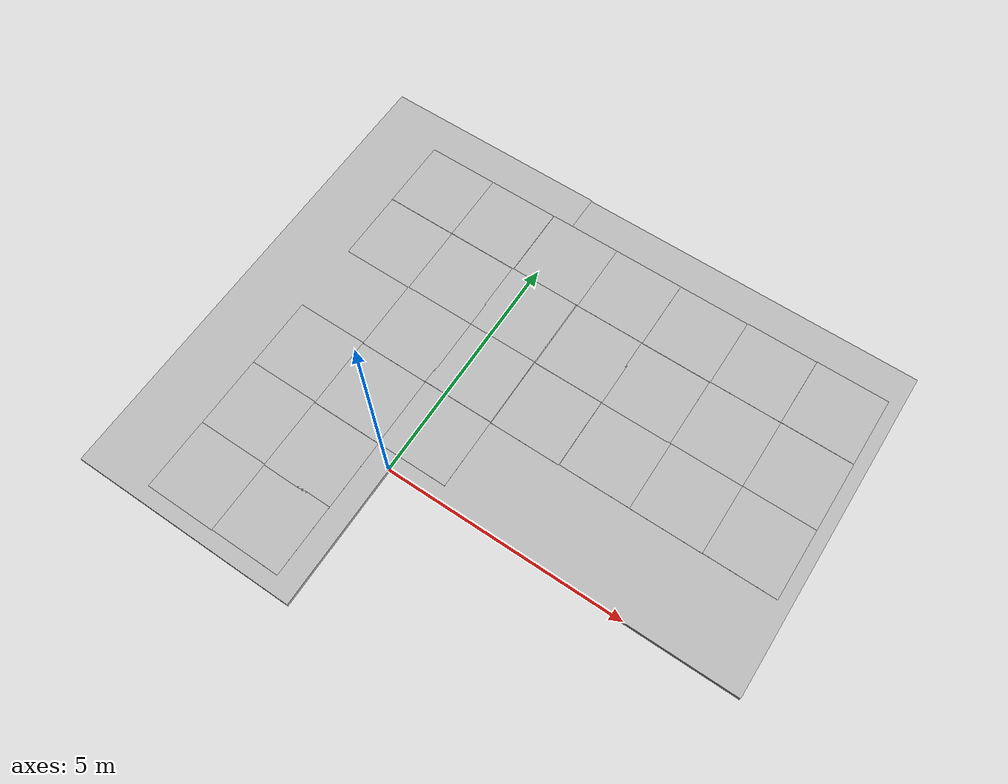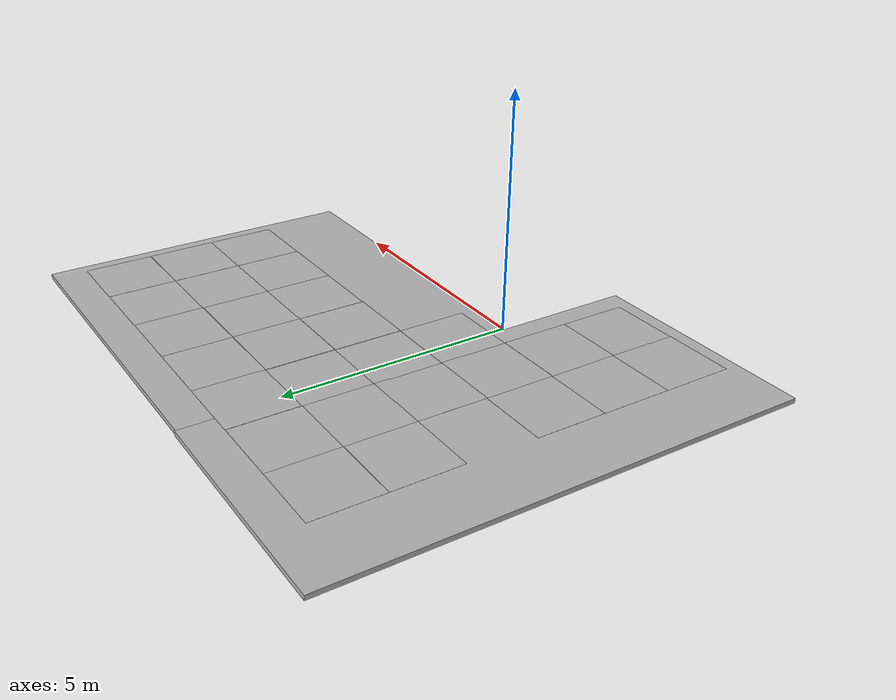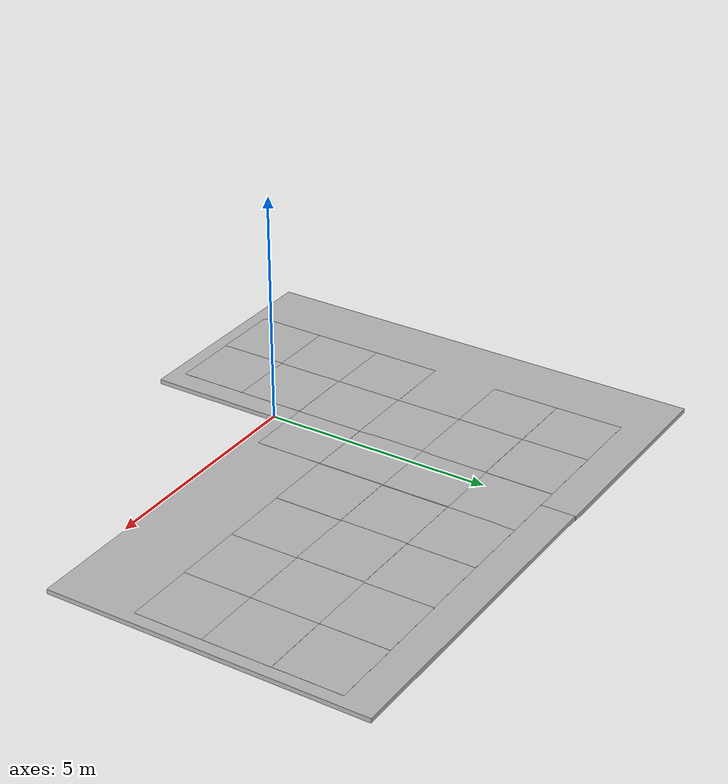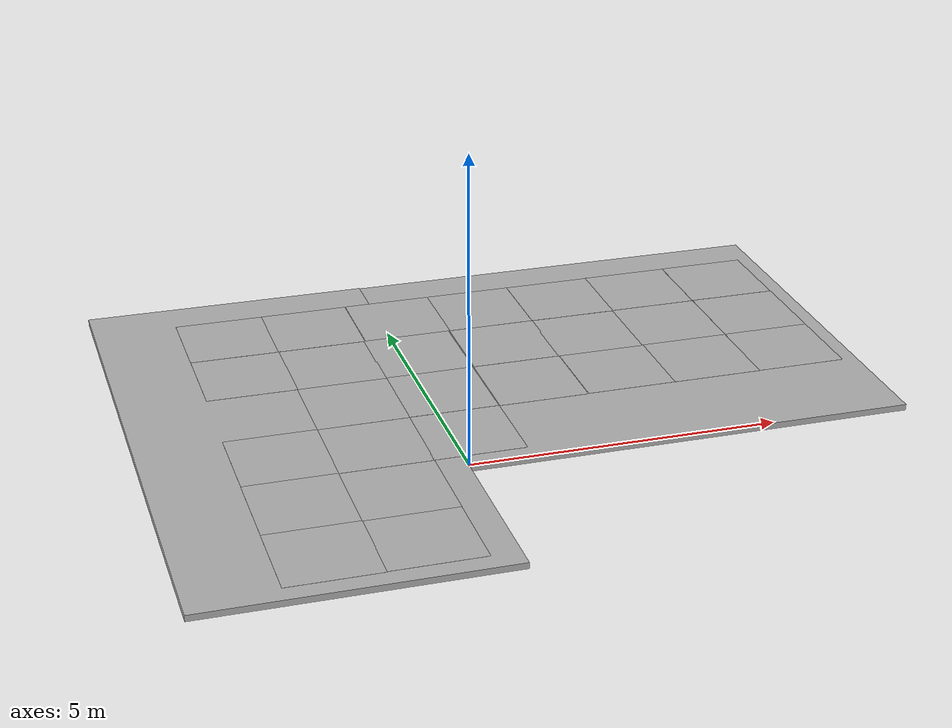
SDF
<sdf version="1.6">
 <world name="default">
  <light name="sun_light" type="directional">
   <pose>0 0 10 0 -0 0</pose>
   <diffuse>0.5 0.5 0.5 1</diffuse>
   <specular>0.1 0.1 0.1 1</specular>
   <direction>0.1 0.1 -0.9</direction>
   <attenuation>
    <range>20</range>
    <constant>0.5</constant>
    <linear>0.01</linear>
    <quadratic>0.001</quadratic>
   </attenuation>
  </light>
  <model name="ground_1">
   <static>1</static>
   <link name="link">
    <collision name="collision"><geometry><box><size>7.3 7.04 0.1</size></box></geometry></collision>
    <visual name="visual"><geometry><box><size>7.3 7.04 0.1</size></box></geometry></visual>
   </link>
   <pose>3.65 3.52 -0.06 0 -0 0</pose>
  </model>
  <model name="ground_2">
   <static>1</static>
   <link name="link">
    <collision name="collision"><geometry><box><size>4.85 10.04 0.1</size></box></geometry></collision>
    <visual name="visual"><geometry><box><size>4.85 10.04 0.1</size></box></geometry></visual>
   </link>
   <pose>-2.425 2.04 -0.06 0 -0 0</pose>
  </model>
  <gravity>0 0 -9.8</gravity>
  <magnetic_field>6e-06 2.3e-05 -4.2e-05</magnetic_field>
  <atmosphere type="adiabatic"/>
  <physics name="default_physics" default="0" type="ode">
   <max_step_size>0.001</max_step_size>
   <real_time_factor>1</real_time_factor>
   <real_time_update_rate>1000</real_time_update_rate>
  </physics>
  <scene><ambient>0.4 0.4 0.4 1</ambient><background>0.7 0.7 0.7 1</background><shadows>1</shadows></scene>
  <spherical_coordinates>
   <surface_model>EARTH_WGS84</surface_model>
   <latitude_deg>0</latitude_deg>
   <longitude_deg>0</longitude_deg>
   <elevation>0</elevation>
   <heading_deg>0</heading_deg>
  </spherical_coordinates>
  <model name="Tile/1-2">
   <static>1</static>
   <link name="link">
    <collision name="collision">
     <geometry><plane><normal>0 0 1</normal><size>1.5 1.5</size></plane></geometry>
     <surface><friction><ode><mu>100</mu><mu2>50</mu2></ode></friction></surface>
    </collision>
    <visual name="visual">
     <cast_shadows>0</cast_shadows>
     <geometry><plane><normal>0 0 1</normal><size>1.5 1.5</size></plane></geometry>
     <material>
      <script>
       <uri>model://modular_1_5m/materials/scripts</uri>
       <uri>model://modular_1_5m/materials/textures</uri>
       <name>Tile/0ef212cca902ba88c256bf758298985edb5f062ee662a8a898f01c2d14971107</name>
      </script>
     </material>
    </visual>
   </link>
   <pose>-1.21412 -0.448569 0 0 -0 0</pose>
  </model>
  <model name="Tile/0-4">
   <static>1</static>
   <link name="link">
    <collision name="collision">
     <geometry><plane><normal>0 0 1</normal><size>1.5 1.5</size></plane></geometry>
     <surface><friction><ode><mu>100</mu><mu2>50</mu2></ode></friction></surface>
    </collision>
    <visual name="visual">
     <cast_shadows>0</cast_shadows>
     <geometry><plane><normal>0 0 1</normal><size>1.5 1.5</size></plane></geometry>
     <material>
      <script>
       <uri>model://modular_1_5m/materials/scripts</uri>
       <uri>model://modular_1_5m/materials/textures</uri>
       <name>Tile/bd2e4e8dc4d154aa52ef85671fbe3a3d6fb2f0ad04a495109eed43c397f7317c</name>
      </script>
     </material>
    </visual>
   </link>
   <pose>-1.20876 1.05417 0 0 -0 0</pose>
  </model>
  <model name="Tile/0-5">
   <static>1</static>
   <link name="link">
    <collision name="collision">
     <geometry><plane><normal>0 0 1</normal><size>1.5 1.5</size></plane></geometry>
     <surface><friction><ode><mu>100</mu><mu2>50</mu2></ode></friction></surface>
    </collision>
    <visual name="visual">
     <cast_shadows>0</cast_shadows>
     <geometry><plane><normal>0 0 1</normal><size>1.5 1.5</size></plane></geometry>
     <material>
      <script>
       <uri>model://modular_1_5m/materials/scripts</uri>
       <uri>model://modular_1_5m/materials/textures</uri>
       <name>Tile/dac9e4bacd653d34d3e52907062531ea15e1a59280949e193dc03b8afc83a67a</name>
      </script>
     </material>
    </visual>
   </link>
   <pose>-1.20331 2.55484 0 0 -0 0</pose>
  </model>
  <model name="Tile/1-1">
   <static>1</static>
   <link name="link">
    <collision name="collision">
     <geometry><plane><normal>0 0 1</normal><size>1.5 1.5</size></plane></geometry>
     <surface><friction><ode><mu>100</mu><mu2>50</mu2></ode></friction></surface>
    </collision>
    <visual name="visual">
     <cast_shadows>0</cast_shadows>
     <geometry><plane><normal>0 0 1</normal><size>1.5 1.5</size></plane></geometry>
     <material>
      <script>
       <uri>model://modular_1_5m/materials/scripts</uri>
       <uri>model://modular_1_5m/materials/textures</uri>
       <name>Tile/fe2560a4458b9ff20b2fd78109d201f7cdd005175f192787a1e462be4ea3aaaa</name>
      </script>
     </material>
    </visual>
   </link>
   <pose>-1.21795 -1.92098 0 0 -0 0</pose>
  </model>
  <model name="Tile/1-3">
   <static>1</static>
   <link name="link">
    <collision name="collision">
     <geometry><plane><normal>0 0 1</normal><size>1.5 1.5</size></plane></geometry>
     <surface><friction><ode><mu>100</mu><mu2>50</mu2></ode></friction></surface>
    </collision>
    <visual name="visual">
     <cast_shadows>0</cast_shadows>
     <geometry><plane><normal>0 0 1</normal><size>1.5 1.5</size></plane></geometry>
     <material>
      <script>
       <uri>model://modular_1_5m/materials/scripts</uri>
       <uri>model://modular_1_5m/materials/textures</uri>
       <name>Tile/d12d42906456b9cd1629af3da9e33e2e839a5b7c716c83248051e1cc15536d39</name>
      </script>
     </material>
    </visual>
   </link>
   <pose>-1.20342 4.04466 0 0 -0 0</pose>
  </model>
  <model name="Tile/0-3">
   <static>1</static>
   <link name="link">
    <collision name="collision">
     <geometry><plane><normal>0 0 1</normal><size>1.5 1.5</size></plane></geometry>
     <surface><friction><ode><mu>100</mu><mu2>50</mu2></ode></friction></surface>
    </collision>
    <visual name="visual">
     <cast_shadows>0</cast_shadows>
     <geometry><plane><normal>0 0 1</normal><size>1.5 1.5</size></plane></geometry>
     <material>
      <script>
       <uri>model://modular_1_5m/materials/scripts</uri>
       <uri>model://modular_1_5m/materials/textures</uri>
       <name>Tile/761d12e1573e512c208124fe0ac63aa6f2105272085d87fe58e4fc635014111e</name>
      </script>
     </material>
    </visual>
   </link>
   <pose>-2.70962 -1.93138 0 0 -0 0</pose>
  </model>
  <model name="Tile/1-2_0">
   <static>1</static>
   <link name="link">
    <collision name="collision">
     <geometry><plane><normal>0 0 1</normal><size>1.5 1.5</size></plane></geometry>
     <surface><friction><ode><mu>100</mu><mu2>50</mu2></ode></friction></surface>
    </collision>
    <visual name="visual">
     <cast_shadows>0</cast_shadows>
     <geometry><plane><normal>0 0 1</normal><size>1.5 1.5</size></plane></geometry>
     <material>
      <script>
       <uri>model://modular_1_5m/materials/scripts</uri>
       <uri>model://modular_1_5m/materials/textures</uri>
       <name>Tile/0ef212cca902ba88c256bf758298985edb5f062ee662a8a898f01c2d14971107</name>
      </script>
     </material>
    </visual>
   </link>
   <pose>-2.7077 -0.43225 0 0 -0 0</pose>
  </model>
  <model name="Tile/1-6">
   <static>1</static>
   <link name="link">
    <collision name="collision">
     <geometry><plane><normal>0 0 1</normal><size>1.5 1.5</size></plane></geometry>
     <surface><friction><ode><mu>100</mu><mu2>50</mu2></ode></friction></surface>
    </collision>
    <visual name="visual">
     <cast_shadows>0</cast_shadows>
     <geometry><plane><normal>0 0 1</normal><size>1.5 1.5</size></plane></geometry>
     <material>
      <script>
       <uri>model://modular_1_5m/materials/scripts</uri>
       <uri>model://modular_1_5m/materials/textures</uri>
       <name>Tile/48e696dfa004bf2f9e7b4f8d08fdb1a6eae7f97953b97489102c9038338946a1</name>
      </script>
     </material>
    </visual>
   </link>
   <pose>-1.1981 5.54988 0 0 -0 0</pose>
  </model>
  <model name="Tile/2-6">
   <static>1</static>
   <link name="link">
    <collision name="collision">
     <geometry><plane><normal>0 0 1</normal><size>1.5 1.5</size></plane></geometry>
     <surface><friction><ode><mu>100</mu><mu2>50</mu2></ode></friction></surface>
    </collision>
    <visual name="visual">
     <cast_shadows>0</cast_shadows>
     <geometry><plane><normal>0 0 1</normal><size>1.5 1.5</size></plane></geometry>
     <material>
      <script>
       <uri>model://modular_1_5m/materials/scripts</uri>
       <uri>model://modular_1_5m/materials/textures</uri>
       <name>Tile/a8903ae51021b9dbd68d7e92874488b7e6f395cdf006b3eaca1ecc0978cd4b11</name>
      </script>
     </material>
    </visual>
   </link>
   <pose>0.309774 5.55542 0 0 -0 0</pose>
  </model>
  <model name="Tile/1-1_0">
   <static>1</static>
   <link name="link">
    <collision name="collision">
     <geometry><plane><normal>0 0 1</normal><size>1.5 1.5</size></plane></geometry>
     <surface><friction><ode><mu>100</mu><mu2>50</mu2></ode></friction></surface>
    </collision>
    <visual name="visual">
     <cast_shadows>0</cast_shadows>
     <geometry><plane><normal>0 0 1</normal><size>1.5 1.5</size></plane></geometry>
     <material>
      <script>
       <uri>model://modular_1_5m/materials/scripts</uri>
       <uri>model://modular_1_5m/materials/textures</uri>
       <name>Tile/fe2560a4458b9ff20b2fd78109d201f7cdd005175f192787a1e462be4ea3aaaa</name>
      </script>
     </material>
    </visual>
   </link>
   <pose>0.277497 1.0589 0 0 -0 0</pose>
  </model>
  <model name="Tile/0-6">
   <static>1</static>
   <link name="link">
    <collision name="collision">
     <geometry><plane><normal>0 0 1</normal><size>1.5 1.5</size></plane></geometry>
     <surface><friction><ode><mu>100</mu><mu2>50</mu2></ode></friction></surface>
    </collision>
    <visual name="visual">
     <cast_shadows>0</cast_shadows>
     <geometry><plane><normal>0 0 1</normal><size>1.5 1.5</size></plane></geometry>
     <material>
      <script>
       <uri>model://modular_1_5m/materials/scripts</uri>
       <uri>model://modular_1_5m/materials/textures</uri>
       <name>Tile/323b286a9a413c813147b38ae356110cffdc09689052eb06e414f9feb75eca89</name>
      </script>
     </material>
    </visual>
   </link>
   <pose>-2.69561 5.54777 0 0 -0 0</pose>
  </model>
  <model name="Tile/0-3_0">
   <static>1</static>
   <link name="link">
    <collision name="collision">
     <geometry><plane><normal>0 0 1</normal><size>1.5 1.5</size></plane></geometry>
     <surface><friction><ode><mu>100</mu><mu2>50</mu2></ode></friction></surface>
    </collision>
    <visual name="visual">
     <cast_shadows>0</cast_shadows>
     <geometry><plane><normal>0 0 1</normal><size>1.5 1.5</size></plane></geometry>
     <material>
      <script>
       <uri>model://modular_1_5m/materials/scripts</uri>
       <uri>model://modular_1_5m/materials/textures</uri>
       <name>Tile/761d12e1573e512c208124fe0ac63aa6f2105272085d87fe58e4fc635014111e</name>
      </script>
     </material>
    </visual>
   </link>
   <pose>-2.69279 4.04336 0 0 -0 0</pose>
  </model>
  <model name="Tile/1-2_1">
   <static>1</static>
   <link name="link">
    <collision name="collision">
     <geometry><plane><normal>0 0 1</normal><size>1.5 1.5</size></plane></geometry>
     <surface><friction><ode><mu>100</mu><mu2>50</mu2></ode></friction></surface>
    </collision>
    <visual name="visual">
     <cast_shadows>0</cast_shadows>
     <geometry><plane><normal>0 0 1</normal><size>1.5 1.5</size></plane></geometry>
     <material>
      <script>
       <uri>model://modular_1_5m/materials/scripts</uri>
       <uri>model://modular_1_5m/materials/textures</uri>
       <name>Tile/0ef212cca902ba88c256bf758298985edb5f062ee662a8a898f01c2d14971107</name>
      </script>
     </material>
    </visual>
   </link>
   <pose>0.273804 2.56224 0 0 -0 0</pose>
  </model>
  <model name="Tile/1-3_0">
   <static>1</static>
   <link name="link">
    <collision name="collision">
     <geometry><plane><normal>0 0 1</normal><size>1.5 1.5</size></plane></geometry>
     <surface><friction><ode><mu>100</mu><mu2>50</mu2></ode></friction></surface>
    </collision>
    <visual name="visual">
     <cast_shadows>0</cast_shadows>
     <geometry><plane><normal>0 0 1</normal><size>1.5 1.5</size></plane></geometry>
     <material>
      <script>
       <uri>model://modular_1_5m/materials/scripts</uri>
       <uri>model://modular_1_5m/materials/textures</uri>
       <name>Tile/d12d42906456b9cd1629af3da9e33e2e839a5b7c716c83248051e1cc15536d39</name>
      </script>
     </material>
    </visual>
   </link>
   <pose>1.78996 5.55523 0 0 -0 0</pose>
  </model>
  <model name="Tile/0-4_0">
   <static>1</static>
   <link name="link">
    <collision name="collision">
     <geometry><plane><normal>0 0 1</normal><size>1.5 1.5</size></plane></geometry>
     <surface><friction><ode><mu>100</mu><mu2>50</mu2></ode></friction></surface>
    </collision>
    <visual name="visual">
     <cast_shadows>0</cast_shadows>
     <geometry><plane><normal>0 0 1</normal><size>1.5 1.5</size></plane></geometry>
     <material>
      <script>
       <uri>model://modular_1_5m/materials/scripts</uri>
       <uri>model://modular_1_5m/materials/textures</uri>
       <name>Tile/bd2e4e8dc4d154aa52ef85671fbe3a3d6fb2f0ad04a495109eed43c397f7317c</name>
      </script>
     </material>
    </visual>
   </link>
   <pose>1.79748 4.05346 0 0 -0 0</pose>
  </model>
  <model name="Tile/1-2_2">
   <static>1</static>
   <link name="link">
    <collision name="collision">
     <geometry><plane><normal>0 0 1</normal><size>1.5 1.5</size></plane></geometry>
     <surface><friction><ode><mu>100</mu><mu2>50</mu2></ode></friction></surface>
    </collision>
    <visual name="visual">
     <cast_shadows>0</cast_shadows>
     <geometry><plane><normal>0 0 1</normal><size>1.5 1.5</size></plane></geometry>
     <material>
      <script>
       <uri>model://modular_1_5m/materials/scripts</uri>
       <uri>model://modular_1_5m/materials/textures</uri>
       <name>Tile/0ef212cca902ba88c256bf758298985edb5f062ee662a8a898f01c2d14971107</name>
      </script>
     </material>
    </visual>
   </link>
   <pose>3.29234 2.5628 0 0 -0 1.5725</pose>
  </model>
  <model name="Tile/1-2_3">
   <static>1</static>
   <link name="link">
    <collision name="collision">
     <geometry><plane><normal>0 0 1</normal><size>1.5 1.5</size></plane></geometry>
     <surface><friction><ode><mu>100</mu><mu2>50</mu2></ode></friction></surface>
    </collision>
    <visual name="visual">
     <cast_shadows>0</cast_shadows>
     <geometry><plane><normal>0 0 1</normal><size>1.5 1.5</size></plane></geometry>
     <material>
      <script>
       <uri>model://modular_1_5m/materials/scripts</uri>
       <uri>model://modular_1_5m/materials/textures</uri>
       <name>Tile/0ef212cca902ba88c256bf758298985edb5f062ee662a8a898f01c2d14971107</name>
      </script>
     </material>
    </visual>
   </link>
   <pose>4.79149 2.56225 0 0 -0 1.5725</pose>
  </model>
  <model name="Tile/0-5_0">
   <static>1</static>
   <link name="link">
    <collision name="collision">
     <geometry><plane><normal>0 0 1</normal><size>1.5 1.5</size></plane></geometry>
     <surface><friction><ode><mu>100</mu><mu2>50</mu2></ode></friction></surface>
    </collision>
    <visual name="visual">
     <cast_shadows>0</cast_shadows>
     <geometry><plane><normal>0 0 1</normal><size>1.5 1.5</size></plane></geometry>
     <material>
      <script>
       <uri>model://modular_1_5m/materials/scripts</uri>
       <uri>model://modular_1_5m/materials/textures</uri>
       <name>Tile/dac9e4bacd653d34d3e52907062531ea15e1a59280949e193dc03b8afc83a67a</name>
      </script>
     </material>
    </visual>
   </link>
   <pose>6.29317 4.06737 0 0 -0 0</pose>
  </model>
  <model name="Tile/0-3_1">
   <static>1</static>
   <link name="link">
    <collision name="collision">
     <geometry><plane><normal>0 0 1</normal><size>1.5 1.5</size></plane></geometry>
     <surface><friction><ode><mu>100</mu><mu2>50</mu2></ode></friction></surface>
    </collision>
    <visual name="visual">
     <cast_shadows>0</cast_shadows>
     <geometry><plane><normal>0 0 1</normal><size>1.5 1.5</size></plane></geometry>
     <material>
      <script>
       <uri>model://modular_1_5m/materials/scripts</uri>
       <uri>model://modular_1_5m/materials/textures</uri>
       <name>Tile/761d12e1573e512c208124fe0ac63aa6f2105272085d87fe58e4fc635014111e</name>
      </script>
     </material>
    </visual>
   </link>
   <pose>1.78644 2.54984 0 0 -0 0</pose>
  </model>
  <model name="Tile/1-3_1">
   <static>1</static>
   <link name="link">
    <collision name="collision">
     <geometry><plane><normal>0 0 1</normal><size>1.5 1.5</size></plane></geometry>
     <surface><friction><ode><mu>100</mu><mu2>50</mu2></ode></friction></surface>
    </collision>
    <visual name="visual">
     <cast_shadows>0</cast_shadows>
     <geometry><plane><normal>0 0 1</normal><size>1.5 1.5</size></plane></geometry>
     <material>
      <script>
       <uri>model://modular_1_5m/materials/scripts</uri>
       <uri>model://modular_1_5m/materials/textures</uri>
       <name>Tile/d12d42906456b9cd1629af3da9e33e2e839a5b7c716c83248051e1cc15536d39</name>
      </script>
     </material>
    </visual>
   </link>
   <pose>6.28795 5.57125 0 0 -0 0</pose>
  </model>
  <model name="Tile/0-6_0">
   <static>1</static>
   <link name="link">
    <collision name="collision">
     <geometry><plane><normal>0 0 1</normal><size>1.5 1.5</size></plane></geometry>
     <surface><friction><ode><mu>100</mu><mu2>50</mu2></ode></friction></surface>
    </collision>
    <visual name="visual">
     <cast_shadows>0</cast_shadows>
     <geometry><plane><normal>0 0 1</normal><size>1.5 1.5</size></plane></geometry>
     <material>
      <script>
       <uri>model://modular_1_5m/materials/scripts</uri>
       <uri>model://modular_1_5m/materials/textures</uri>
       <name>Tile/323b286a9a413c813147b38ae356110cffdc09689052eb06e414f9feb75eca89</name>
      </script>
     </material>
    </visual>
   </link>
   <pose>-2.70513 1.06785 0 0 -0 0</pose>
  </model>
  <model name="Tile/0-6_1">
   <static>1</static>
   <link name="link">
    <collision name="collision">
     <geometry><plane><normal>0 0 1</normal><size>1.5 1.5</size></plane></geometry>
     <surface><friction><ode><mu>100</mu><mu2>50</mu2></ode></friction></surface>
    </collision>
    <visual name="visual">
     <cast_shadows>0</cast_shadows>
     <geometry><plane><normal>0 0 1</normal><size>1.5 1.5</size></plane></geometry>
     <material>
      <script>
       <uri>model://modular_1_5m/materials/scripts</uri>
       <uri>model://modular_1_5m/materials/textures</uri>
       <name>Tile/323b286a9a413c813147b38ae356110cffdc09689052eb06e414f9feb75eca89</name>
      </script>
     </material>
    </visual>
   </link>
   <pose>0.279708 4.05789 0 0 -0 0</pose>
  </model>
  <model name="Tile/0-6_2">
   <static>1</static>
   <link name="link">
    <collision name="collision">
     <geometry><plane><normal>0 0 1</normal><size>1.5 1.5</size></plane></geometry>
     <surface><friction><ode><mu>100</mu><mu2>50</mu2></ode></friction></surface>
    </collision>
    <visual name="visual">
     <cast_shadows>0</cast_shadows>
     <geometry><plane><normal>0 0 1</normal><size>1.5 1.5</size></plane></geometry>
     <material>
      <script>
       <uri>model://modular_1_5m/materials/scripts</uri>
       <uri>model://modular_1_5m/materials/textures</uri>
       <name>Tile/323b286a9a413c813147b38ae356110cffdc09689052eb06e414f9feb75eca89</name>
      </script>
     </material>
    </visual>
   </link>
   <pose>3.29101 5.55353 0 0 -0 0</pose>
  </model>
  <model name="Tile/1-2_4">
   <static>1</static>
   <link name="link">
    <collision name="collision">
     <geometry><plane><normal>0 0 1</normal><size>1.5 1.5</size></plane></geometry>
     <surface><friction><ode><mu>100</mu><mu2>50</mu2></ode></friction></surface>
    </collision>
    <visual name="visual">
     <cast_shadows>0</cast_shadows>
     <geometry><plane><normal>0 0 1</normal><size>1.5 1.5</size></plane></geometry>
     <material>
      <script>
       <uri>model://modular_1_5m/materials/scripts</uri>
       <uri>model://modular_1_5m/materials/textures</uri>
       <name>Tile/0ef212cca902ba88c256bf758298985edb5f062ee662a8a898f01c2d14971107</name>
      </script>
     </material>
    </visual>
   </link>
   <pose>4.78646 5.56342 0 0 -0 1.5725</pose>
  </model>
  <model name="Tile/1-1_1">
   <static>1</static>
   <link name="link">
    <collision name="collision">
     <geometry><plane><normal>0 0 1</normal><size>1.5 1.5</size></plane></geometry>
     <surface><friction><ode><mu>100</mu><mu2>50</mu2></ode></friction></surface>
    </collision>
    <visual name="visual">
     <cast_shadows>0</cast_shadows>
     <geometry><plane><normal>0 0 1</normal><size>1.5 1.5</size></plane></geometry>
     <material>
      <script>
       <uri>model://modular_1_5m/materials/scripts</uri>
       <uri>model://modular_1_5m/materials/textures</uri>
       <name>Tile/fe2560a4458b9ff20b2fd78109d201f7cdd005175f192787a1e462be4ea3aaaa</name>
      </script>
     </material>
    </visual>
   </link>
   <pose>3.27556 4.0486 0 0 -0 0</pose>
  </model>
  <model name="Tile/1-1_2">
   <static>1</static>
   <link name="link">
    <collision name="collision">
     <geometry><plane><normal>0 0 1</normal><size>1.5 1.5</size></plane></geometry>
     <surface><friction><ode><mu>100</mu><mu2>50</mu2></ode></friction></surface>
    </collision>
    <visual name="visual">
     <cast_shadows>0</cast_shadows>
     <geometry><plane><normal>0 0 1</normal><size>1.5 1.5</size></plane></geometry>
     <material>
      <script>
       <uri>model://modular_1_5m/materials/scripts</uri>
       <uri>model://modular_1_5m/materials/textures</uri>
       <name>Tile/fe2560a4458b9ff20b2fd78109d201f7cdd005175f192787a1e462be4ea3aaaa</name>
      </script>
     </material>
    </visual>
   </link>
   <pose>6.29142 2.56896 0 0 -0 0</pose>
  </model>
 </world>
</sdf>
